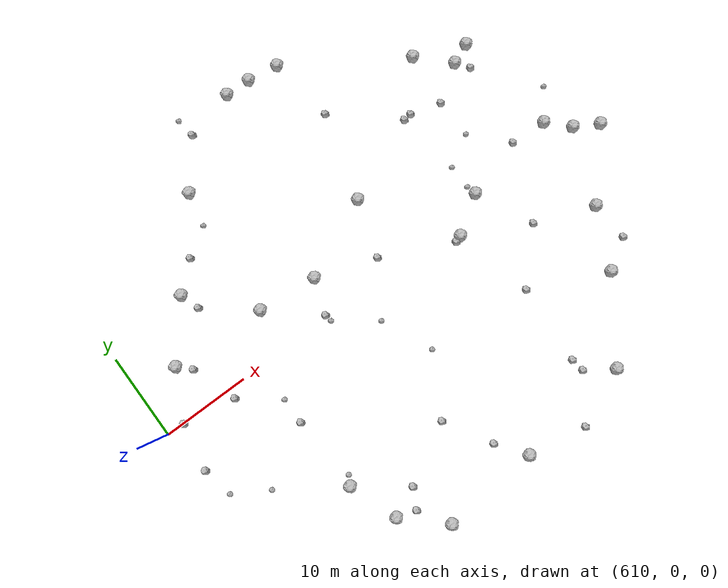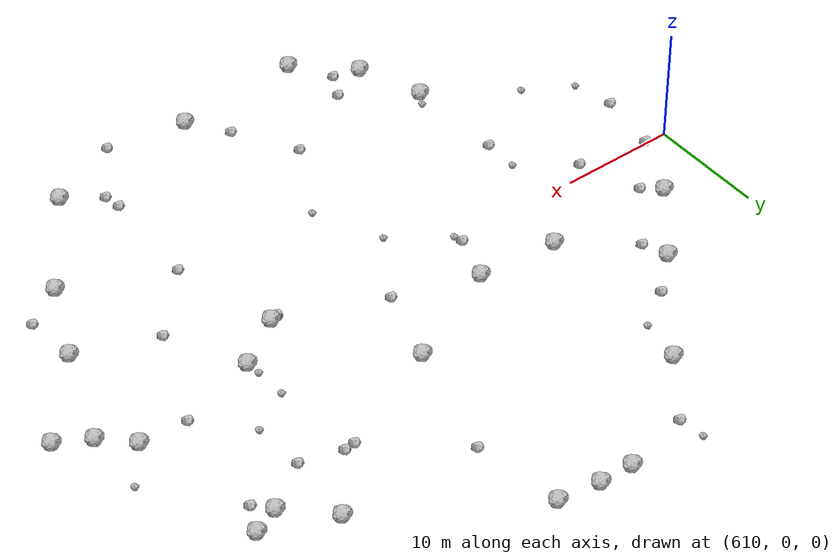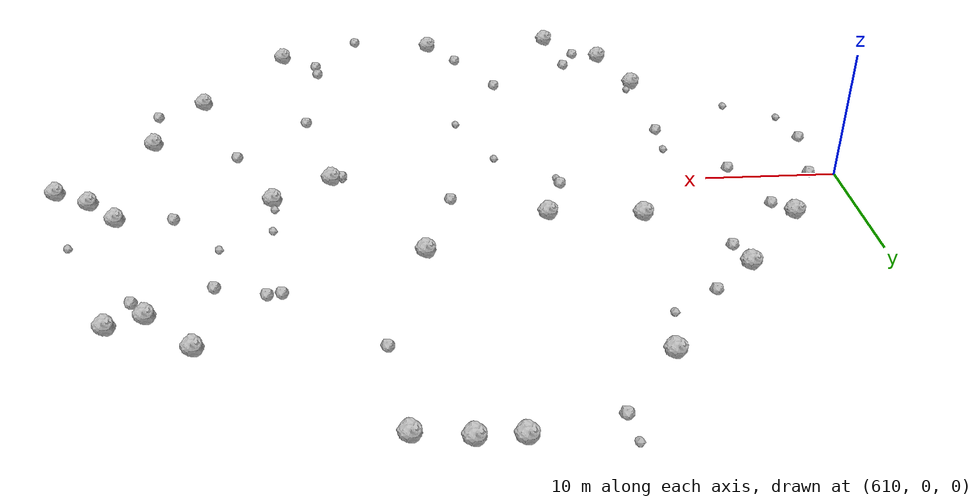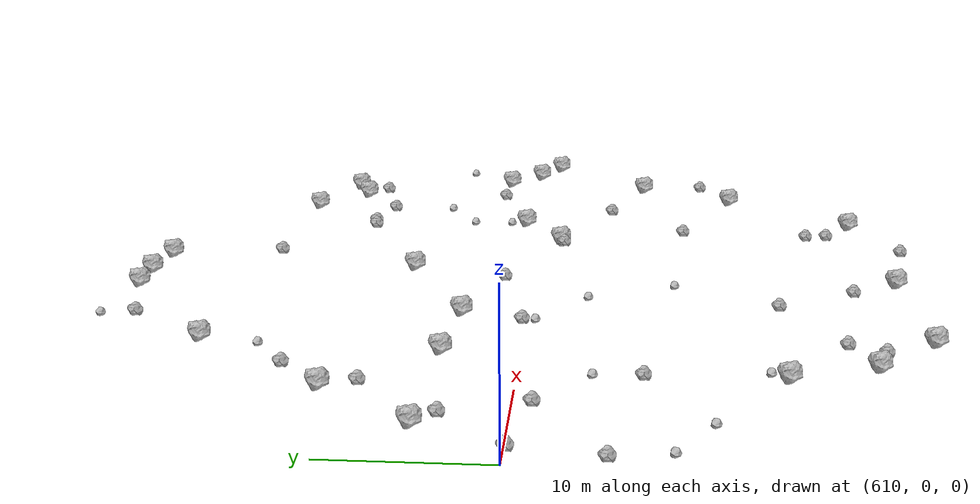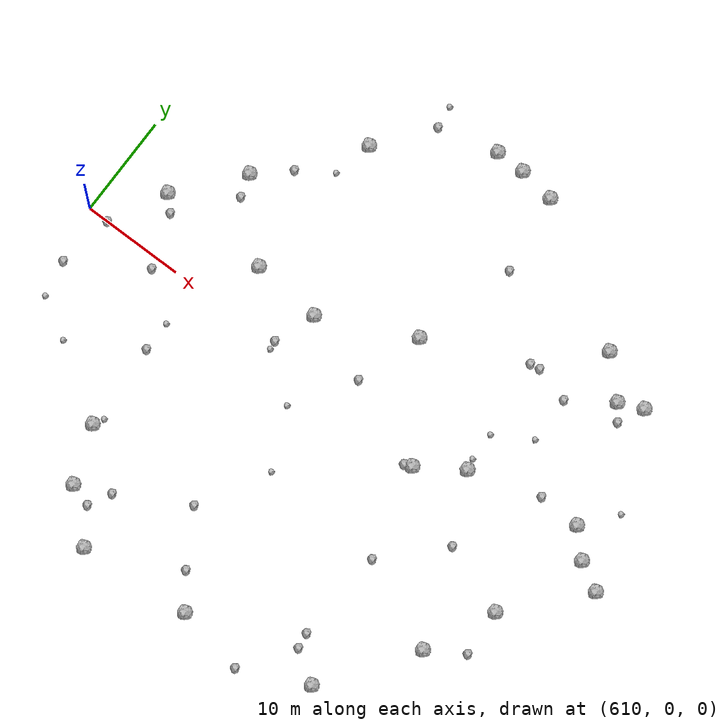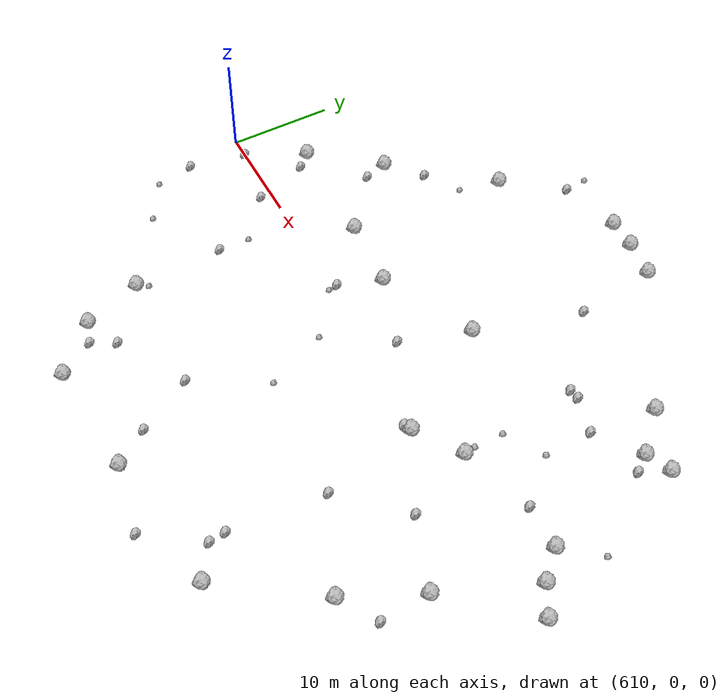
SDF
<sdf version="1.6">
 <world name="default">
  <include><uri>model://sun</uri></include>
  <model name="rock1_16_3">
   <include><uri>model://rock1</uri><pose>629.0473341443841 -25.541603105113655 0.5 0 0 0</pose></include>
  </model>
  <model name="rock1_16_4">
   <include><uri>model://rock1</uri><pose>639.9596340175852 26.91660543894644 0.5 0 0 0</pose></include>
  </model>
  <model name="rock1_16_5">
   <include><uri>model://rock1</uri><pose>653.3055449090566 -23.076060807587915 0.5 0 0 0</pose></include>
  </model>
  <model name="rock1_16_6">
   <include><uri>model://rock1</uri><pose>622.68913334408 -15.979152992891015 0.5 0 0 0</pose></include>
  </model>
  <model name="rock1_16_7">
   <include><uri>model://rock1</uri><pose>641.7696961504121 8.58003644078424 0.5 0 0 0</pose></include>
  </model>
  <model name="rock1_16_8">
   <include><uri>model://rock1</uri><pose>640.0561296817584 -24.73740032408355 0.5 0 0 0</pose></include>
  </model>
  <model name="rock1_16_9">
   <include><uri>model://rock1</uri><pose>619.8907964082989 11.462611830937803 0.5 0 0 0</pose></include>
  </model>
  <model name="rock1_16_10">
   <include><uri>model://rock1</uri><pose>627.1278518278085 20.272611936796352 0.5 0 0 0</pose></include>
  </model>
  <model name="rock1_16_11">
   <include><uri>model://rock1</uri><pose>632.7531581002269 4.379591726951503 0.5 0 0 0</pose></include>
  </model>
  <model name="rock1_16_12">
   <include><uri>model://rock1</uri><pose>668.8060953118777 -0.6013906465576504 0.5 0 0 0</pose></include>
  </model>
  <model name="rock1_16_13">
   <include><uri>model://rock1</uri><pose>614.9531675309967 5.441654708173424 0.5 0 0 0</pose></include>
  </model>
  <model name="rock1_16_14">
   <include><uri>model://rock1</uri><pose>656.5061194094008 18.110961414136405 0.5 0 0 0</pose></include>
  </model>
  <model name="rock1_16_15">
   <include><uri>model://rock1</uri><pose>666.0918861073029 0.9362402245313426 0.5 0 0 0</pose></include>
  </model>
  <model name="rock1_16_16">
   <include><uri>model://rock1</uri><pose>637.0312833871961 26.981887278628633 0.5 0 0 0</pose></include>
  </model>
  <model name="rock1_16_17">
   <include><uri>model://rock1</uri><pose>659.4312078016977 -14.380776958159998 0.5 0 0 0</pose></include>
  </model>
  <model name="rock1_16_18">
   <include><uri>model://rock1</uri><pose>662.6190846845235 -7.633116949952516 0.5 0 0 0</pose></include>
  </model>
  <model name="rock1_16_19">
   <include><uri>model://rock1</uri><pose>643.5255175188626 26.399468683140917 0.5 0 0 0</pose></include>
  </model>
  <model name="rock1_16_20">
   <include><uri>model://rock1</uri><pose>625.9128500140914 4.985912677322311 0.5 0 0 0</pose></include>
  </model>
  <model name="rock1_16_21">
   <include><uri>model://rock1</uri><pose>659.9134217498903 14.714782700422248 0.5 0 0 0</pose></include>
  </model>
  <model name="rock1_16_22">
   <include><uri>model://rock1</uri><pose>663.775208771578 3.293559349944772 0.5 0 0 0</pose></include>
  </model>
  <model name="rock1_16_23">
   <include><uri>model://rock1</uri><pose>648.4702458202491 -1.4235117802636168 0.5 0 0 0</pose></include>
  </model>
  <model name="rock1_16_24">
   <include><uri>model://rock1</uri><pose>662.2631984339057 15.71482842111405 0.5 0 0 0</pose></include>
  </model>
  <model name="rock1_16_25">
   <include><uri>model://rock1</uri><pose>652.6927009395057 1.3744918153983292 0.5 0 0 0</pose></include>
  </model>
  <model name="rock1_16_26">
   <include><uri>model://rock1</uri><pose>624.7068099475022 -21.50020813891604 0.5 0 0 0</pose></include>
  </model>
  <model name="rock2_16_0">
   <include><uri>model://rock2</uri><pose>644.5746971998756 18.66558646535176 0.3 0 0 0</pose></include>
  </model>
  <model name="rock2_16_1">
   <include><uri>model://rock2</uri><pose>637.7056424900026 -21.55262965968072 0.3 0 0 0</pose></include>
  </model>
  <model name="rock2_16_2">
   <include><uri>model://rock2</uri><pose>634.6575451804493 -16.346449844855258 0.3 0 0 0</pose></include>
  </model>
  <model name="rock2_16_3">
   <include><uri>model://rock2</uri><pose>659.5769414616354 3.4880187701763106 0.3 0 0 0</pose></include>
  </model>
  <model name="rock2_16_4">
   <include><uri>model://rock2</uri><pose>647.6806898171823 -1.7010290104208323 0.3 0 0 0</pose></include>
  </model>
  <model name="rock2_16_5">
   <include><uri>model://rock2</uri><pose>650.2364074909552 -21.066477984515373 0.3 0 0 0</pose></include>
  </model>
  <model name="rock2_16_6">
   <include><uri>model://rock2</uri><pose>612.0576561814884 -0.04209737069660946 0.3 0 0 0</pose></include>
  </model>
  <model name="rock2_16_7">
   <include><uri>model://rock2</uri><pose>646.747298072464 -26.016444638155555 0.3 0 0 0</pose></include>
  </model>
  <model name="rock2_16_8">
   <include><uri>model://rock2</uri><pose>662.8737108502886 -12.208404899651708 0.3 0 0 0</pose></include>
  </model>
  <model name="rock2_16_9">
   <include><uri>model://rock2</uri><pose>652.310547512783 12.941360095826475 0.3 0 0 0</pose></include>
  </model>
  <model name="rock2_16_10">
   <include><uri>model://rock2</uri><pose>655.8187568772375 11.940207794926899 0.3 0 0 0</pose></include>
  </model>
  <model name="rock2_16_11">
   <include><uri>model://rock2</uri><pose>626.8445043587942 -22.22477381218414 0.3 0 0 0</pose></include>
  </model>
  <model name="rock2_16_12">
   <include><uri>model://rock2</uri><pose>616.2482636773825 4.09153932824352 0.3 0 0 0</pose></include>
  </model>
  <model name="rock2_16_13">
   <include><uri>model://rock2</uri><pose>651.3450313184964 12.817877853520422 0.3 0 0 0</pose></include>
  </model>
  <model name="rock2_16_14">
   <include><uri>model://rock2</uri><pose>618.0823487187448 -1.107304553952254 0.3 0 0 0</pose></include>
  </model>
  <model name="rock2_16_15">
   <include><uri>model://rock2</uri><pose>622.9634528776124 14.272269713375898 0.3 0 0 0</pose></include>
  </model>
  <model name="rock2_16_16">
   <include><uri>model://rock2</uri><pose>622.3141752425903 -7.422509440138537 0.3 0 0 0</pose></include>
  </model>
  <model name="rock2_16_17">
   <include><uri>model://rock2</uri><pose>655.8111231050658 -5.10952475427413 0.3 0 0 0</pose></include>
  </model>
  <model name="rock2_16_18">
   <include><uri>model://rock2</uri><pose>650.6633082138383 -10.490214805670455 0.3 0 0 0</pose></include>
  </model>
  <model name="rock2_16_19">
   <include><uri>model://rock2</uri><pose>620.5287282175957 9.252026787478734 0.3 0 0 0</pose></include>
  </model>
  <model name="rock2_16_20">
   <include><uri>model://rock2</uri><pose>661.0041637919683 13.252325905258843 0.3 0 0 0</pose></include>
  </model>
  <model name="rock2_16_21">
   <include><uri>model://rock2</uri><pose>631.134271823736 25.56915651394563 0.3 0 0 0</pose></include>
  </model>
  <model name="rock2_16_22">
   <include><uri>model://rock2</uri><pose>631.2771546601118 0.32929402895254967 0.3 0 0 0</pose></include>
  </model>
  <model name="rock2_16_23">
   <include><uri>model://rock2</uri><pose>650.0197130116812 -19.5431474055343 0.3 0 0 0</pose></include>
  </model>
  <model name="rock2_16_24">
   <include><uri>model://rock2</uri><pose>628.0090455201687 -20.011298705025375 0.3 0 0 0</pose></include>
  </model>
  <model name="rock2_16_25">
   <include><uri>model://rock2</uri><pose>639.6285285183384 2.066444969526252 0.3 0 0 0</pose></include>
  </model>
  <model name="rock2_16_26">
   <include><uri>model://rock2</uri><pose>611.1118926222324 -5.480482239644072 0.3 0 0 0</pose></include>
  </model>
  <model name="rock3_16_0">
   <include><uri>model://rock3</uri><pose>666.360143482827 6.56030356575306 0.2 0 0 0</pose></include>
  </model>
  <model name="rock3_16_1">
   <include><uri>model://rock3</uri><pose>652.3716808881347 5.271062017890763 0.2 0 0 0</pose></include>
  </model>
  <model name="rock3_16_2">
   <include><uri>model://rock3</uri><pose>622.3066119841346 -4.445514957090786 0.2 0 0 0</pose></include>
  </model>
  <model name="rock3_16_3">
   <include><uri>model://rock3</uri><pose>652.4175707390567 2.470645490522287 0.2 0 0 0</pose></include>
  </model>
  <model name="rock3_16_4">
   <include><uri>model://rock3</uri><pose>615.6531551651816 -11.395157374928747 0.2 0 0 0</pose></include>
  </model>
  <model name="rock3_16_5">
   <include><uri>model://rock3</uri><pose>623.1864261707263 -14.980612027316742 0.2 0 0 0</pose></include>
  </model>
  <model name="rock3_16_6">
   <include><uri>model://rock3</uri><pose>611.7851067640464 -9.09151378202911 0.2 0 0 0</pose></include>
  </model>
  <model name="rock3_16_7">
   <include><uri>model://rock3</uri><pose>626.1933958674559 16.37223722661208 0.2 0 0 0</pose></include>
  </model>
  <model name="rock3_16_8">
   <include><uri>model://rock3</uri><pose>647.5686614422474 -1.566831936699817 0.2 0 0 0</pose></include>
  </model>
  <model name="rock3_16_9">
   <include><uri>model://rock3</uri><pose>630.8139343188718 27.762300360813633 0.2 0 0 0</pose></include>
  </model>
  <model name="rock3_16_10">
   <include><uri>model://rock3</uri><pose>655.9254801470748 7.378421145520278 0.2 0 0 0</pose></include>
  </model>
  <model name="rock3_16_11">
   <include><uri>model://rock3</uri><pose>631.3803700502294 -0.5475890162511412 0.2 0 0 0</pose></include>
  </model>
  <model name="rock3_16_12">
   <include><uri>model://rock3</uri><pose>635.8211828245741 -3.829008005477565 0.2 0 0 0</pose></include>
  </model>
  <model name="rock3_16_13">
   <include><uri>model://rock3</uri><pose>638.4171421658048 -9.616995804478982 0.2 0 0 0</pose></include>
  </model>
 </world>
</sdf>
